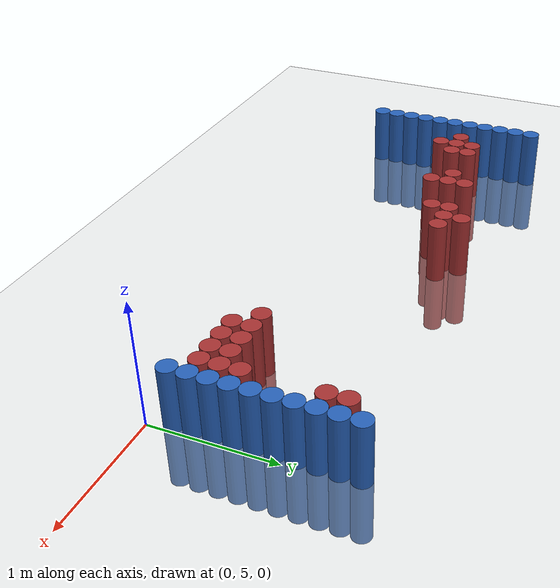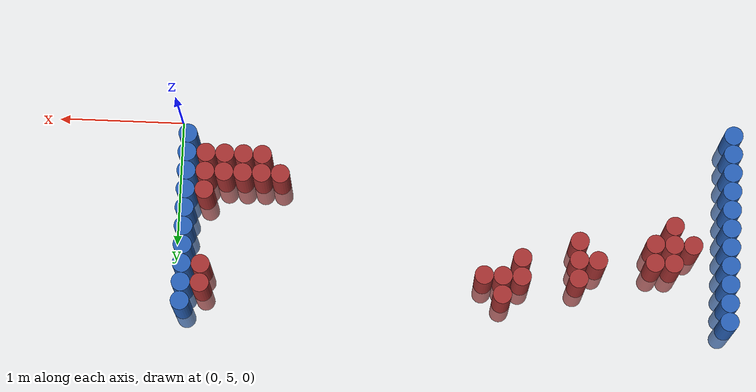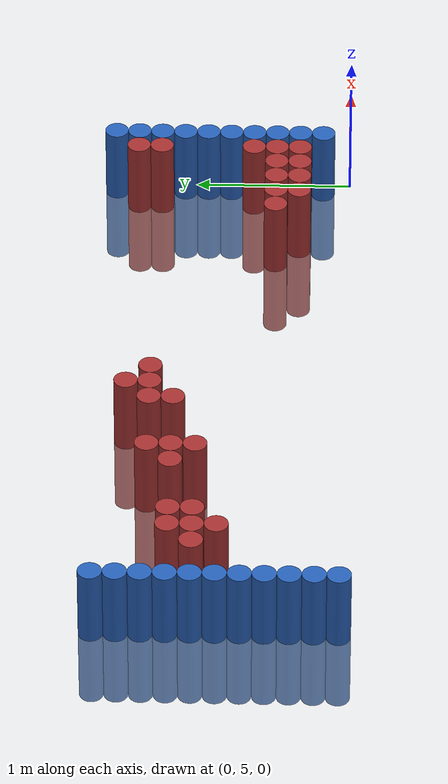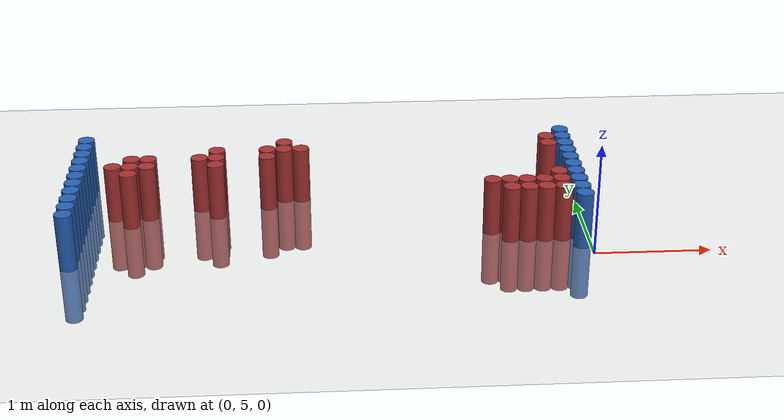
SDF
<sdf version="1.6">
 <world name="default">
  <model name="ground_plane">
   <static>1</static>
   <link name="link">
    <collision name="collision">
     <geometry><plane><normal>0 0 1</normal><size>100 100</size></plane></geometry>
     <surface><friction><ode><mu>100</mu><mu2>50</mu2></ode></friction></surface>
    </collision>
    <visual name="visual">
     <cast_shadows>0</cast_shadows>
     <geometry><plane><normal>0 0 1</normal><size>100 100</size></plane></geometry>
     <material>
      <script><uri>file://media/materials/scripts/gazebo.material</uri><name>Gazebo/Grey</name></script>
     </material>
    </visual>
   </link>
  </model>
  <model name="unit_cylinder_95">
   <static>1</static>
   <pose>-4.425000 5.025000 0.000000 0.000000 0.000000 0.000000</pose>
   <link name="link">
    <inertial>
     <mass>1</mass>
     <inertia><ixx>0.145833</ixx><ixy>0</ixy><ixz>0</ixz><iyy>0.145833</iyy><iyz>0</iyz><izz>0.125</izz></inertia>
    </inertial>
    <collision name="collision">
     <geometry><cylinder><radius>0.075000</radius><length>1</length></cylinder></geometry>
    </collision>
    <visual name="visual">
     <geometry><cylinder><radius>0.075000</radius><length>1</length></cylinder></geometry>
     <material>
      <ambient>0.152000 0.379000 0.720000 1</ambient>
      <diffuse>0.152000 0.379000 0.720000 1</diffuse>
     </material>
     <material>
      <script><name>Gazebo/Grey</name><uri>file://media/materials/scripts/gazebo.material</uri></script>
     </material>
    </visual>
   </link>
  </model>
  <model name="unit_cylinder_96">
   <static>1</static>
   <pose>-4.425000 5.175000 0.000000 0.000000 0.000000 0.000000</pose>
   <link name="link">
    <inertial>
     <mass>1</mass>
     <inertia><ixx>0.145833</ixx><ixy>0</ixy><ixz>0</ixz><iyy>0.145833</iyy><iyz>0</iyz><izz>0.125</izz></inertia>
    </inertial>
    <collision name="collision">
     <geometry><cylinder><radius>0.075000</radius><length>1</length></cylinder></geometry>
    </collision>
    <visual name="visual">
     <geometry><cylinder><radius>0.075000</radius><length>1</length></cylinder></geometry>
     <material>
      <ambient>0.152000 0.379000 0.720000 1</ambient>
      <diffuse>0.152000 0.379000 0.720000 1</diffuse>
     </material>
     <material>
      <script><name>Gazebo/Grey</name><uri>file://media/materials/scripts/gazebo.material</uri></script>
     </material>
    </visual>
   </link>
  </model>
  <model name="unit_cylinder_97">
   <static>1</static>
   <pose>-4.425000 5.325000 0.000000 0.000000 0.000000 0.000000</pose>
   <link name="link">
    <inertial>
     <mass>1</mass>
     <inertia><ixx>0.145833</ixx><ixy>0</ixy><ixz>0</ixz><iyy>0.145833</iyy><iyz>0</iyz><izz>0.125</izz></inertia>
    </inertial>
    <collision name="collision">
     <geometry><cylinder><radius>0.075000</radius><length>1</length></cylinder></geometry>
    </collision>
    <visual name="visual">
     <geometry><cylinder><radius>0.075000</radius><length>1</length></cylinder></geometry>
     <material>
      <ambient>0.152000 0.379000 0.720000 1</ambient>
      <diffuse>0.152000 0.379000 0.720000 1</diffuse>
     </material>
     <material>
      <script><name>Gazebo/Grey</name><uri>file://media/materials/scripts/gazebo.material</uri></script>
     </material>
    </visual>
   </link>
  </model>
  <model name="unit_cylinder_98">
   <static>1</static>
   <pose>-4.425000 5.475000 0.000000 0.000000 0.000000 0.000000</pose>
   <link name="link">
    <inertial>
     <mass>1</mass>
     <inertia><ixx>0.145833</ixx><ixy>0</ixy><ixz>0</ixz><iyy>0.145833</iyy><iyz>0</iyz><izz>0.125</izz></inertia>
    </inertial>
    <collision name="collision">
     <geometry><cylinder><radius>0.075000</radius><length>1</length></cylinder></geometry>
    </collision>
    <visual name="visual">
     <geometry><cylinder><radius>0.075000</radius><length>1</length></cylinder></geometry>
     <material>
      <ambient>0.152000 0.379000 0.720000 1</ambient>
      <diffuse>0.152000 0.379000 0.720000 1</diffuse>
     </material>
     <material>
      <script><name>Gazebo/Grey</name><uri>file://media/materials/scripts/gazebo.material</uri></script>
     </material>
    </visual>
   </link>
  </model>
  <model name="unit_cylinder_99">
   <static>1</static>
   <pose>-4.425000 5.625000 0.000000 0.000000 0.000000 0.000000</pose>
   <link name="link">
    <inertial>
     <mass>1</mass>
     <inertia><ixx>0.145833</ixx><ixy>0</ixy><ixz>0</ixz><iyy>0.145833</iyy><iyz>0</iyz><izz>0.125</izz></inertia>
    </inertial>
    <collision name="collision">
     <geometry><cylinder><radius>0.075000</radius><length>1</length></cylinder></geometry>
    </collision>
    <visual name="visual">
     <geometry><cylinder><radius>0.075000</radius><length>1</length></cylinder></geometry>
     <material>
      <ambient>0.152000 0.379000 0.720000 1</ambient>
      <diffuse>0.152000 0.379000 0.720000 1</diffuse>
     </material>
     <material>
      <script><name>Gazebo/Grey</name><uri>file://media/materials/scripts/gazebo.material</uri></script>
     </material>
    </visual>
   </link>
  </model>
  <model name="unit_cylinder_100">
   <static>1</static>
   <pose>-4.425000 5.775000 0.000000 0.000000 0.000000 0.000000</pose>
   <link name="link">
    <inertial>
     <mass>1</mass>
     <inertia><ixx>0.145833</ixx><ixy>0</ixy><ixz>0</ixz><iyy>0.145833</iyy><iyz>0</iyz><izz>0.125</izz></inertia>
    </inertial>
    <collision name="collision">
     <geometry><cylinder><radius>0.075000</radius><length>1</length></cylinder></geometry>
    </collision>
    <visual name="visual">
     <geometry><cylinder><radius>0.075000</radius><length>1</length></cylinder></geometry>
     <material>
      <ambient>0.152000 0.379000 0.720000 1</ambient>
      <diffuse>0.152000 0.379000 0.720000 1</diffuse>
     </material>
     <material>
      <script><name>Gazebo/Grey</name><uri>file://media/materials/scripts/gazebo.material</uri></script>
     </material>
    </visual>
   </link>
  </model>
  <model name="unit_cylinder_101">
   <static>1</static>
   <pose>-4.425000 5.925000 0.000000 0.000000 0.000000 0.000000</pose>
   <link name="link">
    <inertial>
     <mass>1</mass>
     <inertia><ixx>0.145833</ixx><ixy>0</ixy><ixz>0</ixz><iyy>0.145833</iyy><iyz>0</iyz><izz>0.125</izz></inertia>
    </inertial>
    <collision name="collision">
     <geometry><cylinder><radius>0.075000</radius><length>1</length></cylinder></geometry>
    </collision>
    <visual name="visual">
     <geometry><cylinder><radius>0.075000</radius><length>1</length></cylinder></geometry>
     <material>
      <ambient>0.152000 0.379000 0.720000 1</ambient>
      <diffuse>0.152000 0.379000 0.720000 1</diffuse>
     </material>
     <material>
      <script><name>Gazebo/Grey</name><uri>file://media/materials/scripts/gazebo.material</uri></script>
     </material>
    </visual>
   </link>
  </model>
  <model name="unit_cylinder_102">
   <static>1</static>
   <pose>-4.425000 6.075000 0.000000 0.000000 0.000000 0.000000</pose>
   <link name="link">
    <inertial>
     <mass>1</mass>
     <inertia><ixx>0.145833</ixx><ixy>0</ixy><ixz>0</ixz><iyy>0.145833</iyy><iyz>0</iyz><izz>0.125</izz></inertia>
    </inertial>
    <collision name="collision">
     <geometry><cylinder><radius>0.075000</radius><length>1</length></cylinder></geometry>
    </collision>
    <visual name="visual">
     <geometry><cylinder><radius>0.075000</radius><length>1</length></cylinder></geometry>
     <material>
      <ambient>0.152000 0.379000 0.720000 1</ambient>
      <diffuse>0.152000 0.379000 0.720000 1</diffuse>
     </material>
     <material>
      <script><name>Gazebo/Grey</name><uri>file://media/materials/scripts/gazebo.material</uri></script>
     </material>
    </visual>
   </link>
  </model>
  <model name="unit_cylinder_103">
   <static>1</static>
   <pose>-4.425000 6.225000 0.000000 0.000000 0.000000 0.000000</pose>
   <link name="link">
    <inertial>
     <mass>1</mass>
     <inertia><ixx>0.145833</ixx><ixy>0</ixy><ixz>0</ixz><iyy>0.145833</iyy><iyz>0</iyz><izz>0.125</izz></inertia>
    </inertial>
    <collision name="collision">
     <geometry><cylinder><radius>0.075000</radius><length>1</length></cylinder></geometry>
    </collision>
    <visual name="visual">
     <geometry><cylinder><radius>0.075000</radius><length>1</length></cylinder></geometry>
     <material>
      <ambient>0.152000 0.379000 0.720000 1</ambient>
      <diffuse>0.152000 0.379000 0.720000 1</diffuse>
     </material>
     <material>
      <script><name>Gazebo/Grey</name><uri>file://media/materials/scripts/gazebo.material</uri></script>
     </material>
    </visual>
   </link>
  </model>
  <model name="unit_cylinder_104">
   <static>1</static>
   <pose>-4.425000 6.375000 0.000000 0.000000 0.000000 0.000000</pose>
   <link name="link">
    <inertial>
     <mass>1</mass>
     <inertia><ixx>0.145833</ixx><ixy>0</ixy><ixz>0</ixz><iyy>0.145833</iyy><iyz>0</iyz><izz>0.125</izz></inertia>
    </inertial>
    <collision name="collision">
     <geometry><cylinder><radius>0.075000</radius><length>1</length></cylinder></geometry>
    </collision>
    <visual name="visual">
     <geometry><cylinder><radius>0.075000</radius><length>1</length></cylinder></geometry>
     <material>
      <ambient>0.152000 0.379000 0.720000 1</ambient>
      <diffuse>0.152000 0.379000 0.720000 1</diffuse>
     </material>
     <material>
      <script><name>Gazebo/Grey</name><uri>file://media/materials/scripts/gazebo.material</uri></script>
     </material>
    </visual>
   </link>
  </model>
  <model name="unit_cylinder_105">
   <static>1</static>
   <pose>-4.425000 6.525000 0.000000 0.000000 0.000000 0.000000</pose>
   <link name="link">
    <inertial>
     <mass>1</mass>
     <inertia><ixx>0.145833</ixx><ixy>0</ixy><ixz>0</ixz><iyy>0.145833</iyy><iyz>0</iyz><izz>0.125</izz></inertia>
    </inertial>
    <collision name="collision">
     <geometry><cylinder><radius>0.075000</radius><length>1</length></cylinder></geometry>
    </collision>
    <visual name="visual">
     <geometry><cylinder><radius>0.075000</radius><length>1</length></cylinder></geometry>
     <material>
      <ambient>0.152000 0.379000 0.720000 1</ambient>
      <diffuse>0.152000 0.379000 0.720000 1</diffuse>
     </material>
     <material>
      <script><name>Gazebo/Grey</name><uri>file://media/materials/scripts/gazebo.material</uri></script>
     </material>
    </visual>
   </link>
  </model>
  <model name="unit_cylinder_142">
   <static>1</static>
   <pose>-4.125000 5.925000 0.000000 0.000000 0.000000 0.000000</pose>
   <link name="link">
    <inertial>
     <mass>1</mass>
     <inertia><ixx>0.145833</ixx><ixy>0</ixy><ixz>0</ixz><iyy>0.145833</iyy><iyz>0</iyz><izz>0.125</izz></inertia>
    </inertial>
    <collision name="collision">
     <geometry><cylinder><radius>0.075000</radius><length>1</length></cylinder></geometry>
    </collision>
    <visual name="visual">
     <geometry><cylinder><radius>0.075000</radius><length>1</length></cylinder></geometry>
     <material>
      <ambient>0.648000 0.192000 0.192000 1</ambient>
      <diffuse>0.648000 0.192000 0.192000 1</diffuse>
     </material>
     <material>
      <script><name>Gazebo/Grey</name><uri>file://media/materials/scripts/gazebo.material</uri></script>
     </material>
    </visual>
   </link>
  </model>
  <model name="unit_cylinder_146">
   <static>1</static>
   <pose>-3.975000 5.775000 0.000000 0.000000 0.000000 0.000000</pose>
   <link name="link">
    <inertial>
     <mass>1</mass>
     <inertia><ixx>0.145833</ixx><ixy>0</ixy><ixz>0</ixz><iyy>0.145833</iyy><iyz>0</iyz><izz>0.125</izz></inertia>
    </inertial>
    <collision name="collision">
     <geometry><cylinder><radius>0.075000</radius><length>1</length></cylinder></geometry>
    </collision>
    <visual name="visual">
     <geometry><cylinder><radius>0.075000</radius><length>1</length></cylinder></geometry>
     <material>
      <ambient>0.648000 0.192000 0.192000 1</ambient>
      <diffuse>0.648000 0.192000 0.192000 1</diffuse>
     </material>
     <material>
      <script><name>Gazebo/Grey</name><uri>file://media/materials/scripts/gazebo.material</uri></script>
     </material>
    </visual>
   </link>
  </model>
  <model name="unit_cylinder_147">
   <static>1</static>
   <pose>-3.975000 5.925000 0.000000 0.000000 0.000000 0.000000</pose>
   <link name="link">
    <inertial>
     <mass>1</mass>
     <inertia><ixx>0.145833</ixx><ixy>0</ixy><ixz>0</ixz><iyy>0.145833</iyy><iyz>0</iyz><izz>0.125</izz></inertia>
    </inertial>
    <collision name="collision">
     <geometry><cylinder><radius>0.075000</radius><length>1</length></cylinder></geometry>
    </collision>
    <visual name="visual">
     <geometry><cylinder><radius>0.075000</radius><length>1</length></cylinder></geometry>
     <material>
      <ambient>0.648000 0.192000 0.192000 1</ambient>
      <diffuse>0.648000 0.192000 0.192000 1</diffuse>
     </material>
     <material>
      <script><name>Gazebo/Grey</name><uri>file://media/materials/scripts/gazebo.material</uri></script>
     </material>
    </visual>
   </link>
  </model>
  <model name="unit_cylinder_148">
   <static>1</static>
   <pose>-3.975000 6.075000 0.000000 0.000000 0.000000 0.000000</pose>
   <link name="link">
    <inertial>
     <mass>1</mass>
     <inertia><ixx>0.145833</ixx><ixy>0</ixy><ixz>0</ixz><iyy>0.145833</iyy><iyz>0</iyz><izz>0.125</izz></inertia>
    </inertial>
    <collision name="collision">
     <geometry><cylinder><radius>0.075000</radius><length>1</length></cylinder></geometry>
    </collision>
    <visual name="visual">
     <geometry><cylinder><radius>0.075000</radius><length>1</length></cylinder></geometry>
     <material>
      <ambient>0.648000 0.192000 0.192000 1</ambient>
      <diffuse>0.648000 0.192000 0.192000 1</diffuse>
     </material>
     <material>
      <script><name>Gazebo/Grey</name><uri>file://media/materials/scripts/gazebo.material</uri></script>
     </material>
    </visual>
   </link>
  </model>
  <model name="unit_cylinder_151">
   <static>1</static>
   <pose>-3.825000 5.925000 0.000000 0.000000 0.000000 0.000000</pose>
   <link name="link">
    <inertial>
     <mass>1</mass>
     <inertia><ixx>0.145833</ixx><ixy>0</ixy><ixz>0</ixz><iyy>0.145833</iyy><iyz>0</iyz><izz>0.125</izz></inertia>
    </inertial>
    <collision name="collision">
     <geometry><cylinder><radius>0.075000</radius><length>1</length></cylinder></geometry>
    </collision>
    <visual name="visual">
     <geometry><cylinder><radius>0.075000</radius><length>1</length></cylinder></geometry>
     <material>
      <ambient>0.648000 0.192000 0.192000 1</ambient>
      <diffuse>0.648000 0.192000 0.192000 1</diffuse>
     </material>
     <material>
      <script><name>Gazebo/Grey</name><uri>file://media/materials/scripts/gazebo.material</uri></script>
     </material>
    </visual>
   </link>
  </model>
  <model name="unit_cylinder_152">
   <static>1</static>
   <pose>-3.825000 6.075000 0.000000 0.000000 0.000000 0.000000</pose>
   <link name="link">
    <inertial>
     <mass>1</mass>
     <inertia><ixx>0.145833</ixx><ixy>0</ixy><ixz>0</ixz><iyy>0.145833</iyy><iyz>0</iyz><izz>0.125</izz></inertia>
    </inertial>
    <collision name="collision">
     <geometry><cylinder><radius>0.075000</radius><length>1</length></cylinder></geometry>
    </collision>
    <visual name="visual">
     <geometry><cylinder><radius>0.075000</radius><length>1</length></cylinder></geometry>
     <material>
      <ambient>0.648000 0.192000 0.192000 1</ambient>
      <diffuse>0.648000 0.192000 0.192000 1</diffuse>
     </material>
     <material>
      <script><name>Gazebo/Grey</name><uri>file://media/materials/scripts/gazebo.material</uri></script>
     </material>
    </visual>
   </link>
  </model>
  <model name="unit_cylinder_160">
   <static>1</static>
   <pose>-3.375000 6.075000 0.000000 0.000000 0.000000 0.000000</pose>
   <link name="link">
    <inertial>
     <mass>1</mass>
     <inertia><ixx>0.145833</ixx><ixy>0</ixy><ixz>0</ixz><iyy>0.145833</iyy><iyz>0</iyz><izz>0.125</izz></inertia>
    </inertial>
    <collision name="collision">
     <geometry><cylinder><radius>0.075000</radius><length>1</length></cylinder></geometry>
    </collision>
    <visual name="visual">
     <geometry><cylinder><radius>0.075000</radius><length>1</length></cylinder></geometry>
     <material>
      <ambient>0.648000 0.192000 0.192000 1</ambient>
      <diffuse>0.648000 0.192000 0.192000 1</diffuse>
     </material>
     <material>
      <script><name>Gazebo/Grey</name><uri>file://media/materials/scripts/gazebo.material</uri></script>
     </material>
    </visual>
   </link>
  </model>
  <model name="unit_cylinder_161">
   <static>1</static>
   <pose>-3.225000 5.925000 0.000000 0.000000 0.000000 0.000000</pose>
   <link name="link">
    <inertial>
     <mass>1</mass>
     <inertia><ixx>0.145833</ixx><ixy>0</ixy><ixz>0</ixz><iyy>0.145833</iyy><iyz>0</iyz><izz>0.125</izz></inertia>
    </inertial>
    <collision name="collision">
     <geometry><cylinder><radius>0.075000</radius><length>1</length></cylinder></geometry>
    </collision>
    <visual name="visual">
     <geometry><cylinder><radius>0.075000</radius><length>1</length></cylinder></geometry>
     <material>
      <ambient>0.648000 0.192000 0.192000 1</ambient>
      <diffuse>0.648000 0.192000 0.192000 1</diffuse>
     </material>
     <material>
      <script><name>Gazebo/Grey</name><uri>file://media/materials/scripts/gazebo.material</uri></script>
     </material>
    </visual>
   </link>
  </model>
  <model name="unit_cylinder_162">
   <static>1</static>
   <pose>-3.225000 6.075000 0.000000 0.000000 0.000000 0.000000</pose>
   <link name="link">
    <inertial>
     <mass>1</mass>
     <inertia><ixx>0.145833</ixx><ixy>0</ixy><ixz>0</ixz><iyy>0.145833</iyy><iyz>0</iyz><izz>0.125</izz></inertia>
    </inertial>
    <collision name="collision">
     <geometry><cylinder><radius>0.075000</radius><length>1</length></cylinder></geometry>
    </collision>
    <visual name="visual">
     <geometry><cylinder><radius>0.075000</radius><length>1</length></cylinder></geometry>
     <material>
      <ambient>0.648000 0.192000 0.192000 1</ambient>
      <diffuse>0.648000 0.192000 0.192000 1</diffuse>
     </material>
     <material>
      <script><name>Gazebo/Grey</name><uri>file://media/materials/scripts/gazebo.material</uri></script>
     </material>
    </visual>
   </link>
  </model>
  <model name="unit_cylinder_163">
   <static>1</static>
   <pose>-3.225000 6.225000 0.000000 0.000000 0.000000 0.000000</pose>
   <link name="link">
    <inertial>
     <mass>1</mass>
     <inertia><ixx>0.145833</ixx><ixy>0</ixy><ixz>0</ixz><iyy>0.145833</iyy><iyz>0</iyz><izz>0.125</izz></inertia>
    </inertial>
    <collision name="collision">
     <geometry><cylinder><radius>0.075000</radius><length>1</length></cylinder></geometry>
    </collision>
    <visual name="visual">
     <geometry><cylinder><radius>0.075000</radius><length>1</length></cylinder></geometry>
     <material>
      <ambient>0.648000 0.192000 0.192000 1</ambient>
      <diffuse>0.648000 0.192000 0.192000 1</diffuse>
     </material>
     <material>
      <script><name>Gazebo/Grey</name><uri>file://media/materials/scripts/gazebo.material</uri></script>
     </material>
    </visual>
   </link>
  </model>
  <model name="unit_cylinder_164">
   <static>1</static>
   <pose>-2.775000 6.075000 0.000000 0.000000 0.000000 0.000000</pose>
   <link name="link">
    <inertial>
     <mass>1</mass>
     <inertia><ixx>0.145833</ixx><ixy>0</ixy><ixz>0</ixz><iyy>0.145833</iyy><iyz>0</iyz><izz>0.125</izz></inertia>
    </inertial>
    <collision name="collision">
     <geometry><cylinder><radius>0.075000</radius><length>1</length></cylinder></geometry>
    </collision>
    <visual name="visual">
     <geometry><cylinder><radius>0.075000</radius><length>1</length></cylinder></geometry>
     <material>
      <ambient>0.648000 0.192000 0.192000 1</ambient>
      <diffuse>0.648000 0.192000 0.192000 1</diffuse>
     </material>
     <material>
      <script><name>Gazebo/Grey</name><uri>file://media/materials/scripts/gazebo.material</uri></script>
     </material>
    </visual>
   </link>
  </model>
  <model name="unit_cylinder_165">
   <static>1</static>
   <pose>-2.775000 6.225000 0.000000 0.000000 0.000000 0.000000</pose>
   <link name="link">
    <inertial>
     <mass>1</mass>
     <inertia><ixx>0.145833</ixx><ixy>0</ixy><ixz>0</ixz><iyy>0.145833</iyy><iyz>0</iyz><izz>0.125</izz></inertia>
    </inertial>
    <collision name="collision">
     <geometry><cylinder><radius>0.075000</radius><length>1</length></cylinder></geometry>
    </collision>
    <visual name="visual">
     <geometry><cylinder><radius>0.075000</radius><length>1</length></cylinder></geometry>
     <material>
      <ambient>0.648000 0.192000 0.192000 1</ambient>
      <diffuse>0.648000 0.192000 0.192000 1</diffuse>
     </material>
     <material>
      <script><name>Gazebo/Grey</name><uri>file://media/materials/scripts/gazebo.material</uri></script>
     </material>
    </visual>
   </link>
  </model>
  <model name="unit_cylinder_166">
   <static>1</static>
   <pose>-2.625000 6.225000 0.000000 0.000000 0.000000 0.000000</pose>
   <link name="link">
    <inertial>
     <mass>1</mass>
     <inertia><ixx>0.145833</ixx><ixy>0</ixy><ixz>0</ixz><iyy>0.145833</iyy><iyz>0</iyz><izz>0.125</izz></inertia>
    </inertial>
    <collision name="collision">
     <geometry><cylinder><radius>0.075000</radius><length>1</length></cylinder></geometry>
    </collision>
    <visual name="visual">
     <geometry><cylinder><radius>0.075000</radius><length>1</length></cylinder></geometry>
     <material>
      <ambient>0.648000 0.192000 0.192000 1</ambient>
      <diffuse>0.648000 0.192000 0.192000 1</diffuse>
     </material>
     <material>
      <script><name>Gazebo/Grey</name><uri>file://media/materials/scripts/gazebo.material</uri></script>
     </material>
    </visual>
   </link>
  </model>
  <model name="unit_cylinder_167">
   <static>1</static>
   <pose>-2.625000 6.375000 0.000000 0.000000 0.000000 0.000000</pose>
   <link name="link">
    <inertial>
     <mass>1</mass>
     <inertia><ixx>0.145833</ixx><ixy>0</ixy><ixz>0</ixz><iyy>0.145833</iyy><iyz>0</iyz><izz>0.125</izz></inertia>
    </inertial>
    <collision name="collision">
     <geometry><cylinder><radius>0.075000</radius><length>1</length></cylinder></geometry>
    </collision>
    <visual name="visual">
     <geometry><cylinder><radius>0.075000</radius><length>1</length></cylinder></geometry>
     <material>
      <ambient>0.648000 0.192000 0.192000 1</ambient>
      <diffuse>0.648000 0.192000 0.192000 1</diffuse>
     </material>
     <material>
      <script><name>Gazebo/Grey</name><uri>file://media/materials/scripts/gazebo.material</uri></script>
     </material>
    </visual>
   </link>
  </model>
  <model name="unit_cylinder_168">
   <static>1</static>
   <pose>-2.475000 6.225000 0.000000 0.000000 0.000000 0.000000</pose>
   <link name="link">
    <inertial>
     <mass>1</mass>
     <inertia><ixx>0.145833</ixx><ixy>0</ixy><ixz>0</ixz><iyy>0.145833</iyy><iyz>0</iyz><izz>0.125</izz></inertia>
    </inertial>
    <collision name="collision">
     <geometry><cylinder><radius>0.075000</radius><length>1</length></cylinder></geometry>
    </collision>
    <visual name="visual">
     <geometry><cylinder><radius>0.075000</radius><length>1</length></cylinder></geometry>
     <material>
      <ambient>0.648000 0.192000 0.192000 1</ambient>
      <diffuse>0.648000 0.192000 0.192000 1</diffuse>
     </material>
     <material>
      <script><name>Gazebo/Grey</name><uri>file://media/materials/scripts/gazebo.material</uri></script>
     </material>
    </visual>
   </link>
  </model>
  <model name="unit_cylinder_181">
   <static>1</static>
   <pose>-0.825000 5.475000 0.000000 0.000000 0.000000 0.000000</pose>
   <link name="link">
    <inertial>
     <mass>1</mass>
     <inertia><ixx>0.145833</ixx><ixy>0</ixy><ixz>0</ixz><iyy>0.145833</iyy><iyz>0</iyz><izz>0.125</izz></inertia>
    </inertial>
    <collision name="collision">
     <geometry><cylinder><radius>0.075000</radius><length>1</length></cylinder></geometry>
    </collision>
    <visual name="visual">
     <geometry><cylinder><radius>0.075000</radius><length>1</length></cylinder></geometry>
     <material>
      <ambient>0.648000 0.192000 0.192000 1</ambient>
      <diffuse>0.648000 0.192000 0.192000 1</diffuse>
     </material>
     <material>
      <script><name>Gazebo/Grey</name><uri>file://media/materials/scripts/gazebo.material</uri></script>
     </material>
    </visual>
   </link>
  </model>
  <model name="unit_cylinder_182">
   <static>1</static>
   <pose>-0.675000 5.325000 0.000000 0.000000 0.000000 0.000000</pose>
   <link name="link">
    <inertial>
     <mass>1</mass>
     <inertia><ixx>0.145833</ixx><ixy>0</ixy><ixz>0</ixz><iyy>0.145833</iyy><iyz>0</iyz><izz>0.125</izz></inertia>
    </inertial>
    <collision name="collision">
     <geometry><cylinder><radius>0.075000</radius><length>1</length></cylinder></geometry>
    </collision>
    <visual name="visual">
     <geometry><cylinder><radius>0.075000</radius><length>1</length></cylinder></geometry>
     <material>
      <ambient>0.648000 0.192000 0.192000 1</ambient>
      <diffuse>0.648000 0.192000 0.192000 1</diffuse>
     </material>
     <material>
      <script><name>Gazebo/Grey</name><uri>file://media/materials/scripts/gazebo.material</uri></script>
     </material>
    </visual>
   </link>
  </model>
  <model name="unit_cylinder_183">
   <static>1</static>
   <pose>-0.675000 5.475000 0.000000 0.000000 0.000000 0.000000</pose>
   <link name="link">
    <inertial>
     <mass>1</mass>
     <inertia><ixx>0.145833</ixx><ixy>0</ixy><ixz>0</ixz><iyy>0.145833</iyy><iyz>0</iyz><izz>0.125</izz></inertia>
    </inertial>
    <collision name="collision">
     <geometry><cylinder><radius>0.075000</radius><length>1</length></cylinder></geometry>
    </collision>
    <visual name="visual">
     <geometry><cylinder><radius>0.075000</radius><length>1</length></cylinder></geometry>
     <material>
      <ambient>0.648000 0.192000 0.192000 1</ambient>
      <diffuse>0.648000 0.192000 0.192000 1</diffuse>
     </material>
     <material>
      <script><name>Gazebo/Grey</name><uri>file://media/materials/scripts/gazebo.material</uri></script>
     </material>
    </visual>
   </link>
  </model>
  <model name="unit_cylinder_184">
   <static>1</static>
   <pose>-0.525000 5.325000 0.000000 0.000000 0.000000 0.000000</pose>
   <link name="link">
    <inertial>
     <mass>1</mass>
     <inertia><ixx>0.145833</ixx><ixy>0</ixy><ixz>0</ixz><iyy>0.145833</iyy><iyz>0</iyz><izz>0.125</izz></inertia>
    </inertial>
    <collision name="collision">
     <geometry><cylinder><radius>0.075000</radius><length>1</length></cylinder></geometry>
    </collision>
    <visual name="visual">
     <geometry><cylinder><radius>0.075000</radius><length>1</length></cylinder></geometry>
     <material>
      <ambient>0.648000 0.192000 0.192000 1</ambient>
      <diffuse>0.648000 0.192000 0.192000 1</diffuse>
     </material>
     <material>
      <script><name>Gazebo/Grey</name><uri>file://media/materials/scripts/gazebo.material</uri></script>
     </material>
    </visual>
   </link>
  </model>
  <model name="unit_cylinder_185">
   <static>1</static>
   <pose>-0.525000 5.475000 0.000000 0.000000 0.000000 0.000000</pose>
   <link name="link">
    <inertial>
     <mass>1</mass>
     <inertia><ixx>0.145833</ixx><ixy>0</ixy><ixz>0</ixz><iyy>0.145833</iyy><iyz>0</iyz><izz>0.125</izz></inertia>
    </inertial>
    <collision name="collision">
     <geometry><cylinder><radius>0.075000</radius><length>1</length></cylinder></geometry>
    </collision>
    <visual name="visual">
     <geometry><cylinder><radius>0.075000</radius><length>1</length></cylinder></geometry>
     <material>
      <ambient>0.648000 0.192000 0.192000 1</ambient>
      <diffuse>0.648000 0.192000 0.192000 1</diffuse>
     </material>
     <material>
      <script><name>Gazebo/Grey</name><uri>file://media/materials/scripts/gazebo.material</uri></script>
     </material>
    </visual>
   </link>
  </model>
  <model name="unit_cylinder_186">
   <static>1</static>
   <pose>-0.375000 5.325000 0.000000 0.000000 0.000000 0.000000</pose>
   <link name="link">
    <inertial>
     <mass>1</mass>
     <inertia><ixx>0.145833</ixx><ixy>0</ixy><ixz>0</ixz><iyy>0.145833</iyy><iyz>0</iyz><izz>0.125</izz></inertia>
    </inertial>
    <collision name="collision">
     <geometry><cylinder><radius>0.075000</radius><length>1</length></cylinder></geometry>
    </collision>
    <visual name="visual">
     <geometry><cylinder><radius>0.075000</radius><length>1</length></cylinder></geometry>
     <material>
      <ambient>0.648000 0.192000 0.192000 1</ambient>
      <diffuse>0.648000 0.192000 0.192000 1</diffuse>
     </material>
     <material>
      <script><name>Gazebo/Grey</name><uri>file://media/materials/scripts/gazebo.material</uri></script>
     </material>
    </visual>
   </link>
  </model>
  <model name="unit_cylinder_187">
   <static>1</static>
   <pose>-0.375000 5.475000 0.000000 0.000000 0.000000 0.000000</pose>
   <link name="link">
    <inertial>
     <mass>1</mass>
     <inertia><ixx>0.145833</ixx><ixy>0</ixy><ixz>0</ixz><iyy>0.145833</iyy><iyz>0</iyz><izz>0.125</izz></inertia>
    </inertial>
    <collision name="collision">
     <geometry><cylinder><radius>0.075000</radius><length>1</length></cylinder></geometry>
    </collision>
    <visual name="visual">
     <geometry><cylinder><radius>0.075000</radius><length>1</length></cylinder></geometry>
     <material>
      <ambient>0.648000 0.192000 0.192000 1</ambient>
      <diffuse>0.648000 0.192000 0.192000 1</diffuse>
     </material>
     <material>
      <script><name>Gazebo/Grey</name><uri>file://media/materials/scripts/gazebo.material</uri></script>
     </material>
    </visual>
   </link>
  </model>
  <model name="unit_cylinder_194">
   <static>1</static>
   <pose>-0.225000 5.325000 0.000000 0.000000 0.000000 0.000000</pose>
   <link name="link">
    <inertial>
     <mass>1</mass>
     <inertia><ixx>0.145833</ixx><ixy>0</ixy><ixz>0</ixz><iyy>0.145833</iyy><iyz>0</iyz><izz>0.125</izz></inertia>
    </inertial>
    <collision name="collision">
     <geometry><cylinder><radius>0.075000</radius><length>1</length></cylinder></geometry>
    </collision>
    <visual name="visual">
     <geometry><cylinder><radius>0.075000</radius><length>1</length></cylinder></geometry>
     <material>
      <ambient>0.648000 0.192000 0.192000 1</ambient>
      <diffuse>0.648000 0.192000 0.192000 1</diffuse>
     </material>
     <material>
      <script><name>Gazebo/Grey</name><uri>file://media/materials/scripts/gazebo.material</uri></script>
     </material>
    </visual>
   </link>
  </model>
  <model name="unit_cylinder_195">
   <static>1</static>
   <pose>-0.225000 5.475000 0.000000 0.000000 0.000000 0.000000</pose>
   <link name="link">
    <inertial>
     <mass>1</mass>
     <inertia><ixx>0.145833</ixx><ixy>0</ixy><ixz>0</ixz><iyy>0.145833</iyy><iyz>0</iyz><izz>0.125</izz></inertia>
    </inertial>
    <collision name="collision">
     <geometry><cylinder><radius>0.075000</radius><length>1</length></cylinder></geometry>
    </collision>
    <visual name="visual">
     <geometry><cylinder><radius>0.075000</radius><length>1</length></cylinder></geometry>
     <material>
      <ambient>0.648000 0.192000 0.192000 1</ambient>
      <diffuse>0.648000 0.192000 0.192000 1</diffuse>
     </material>
     <material>
      <script><name>Gazebo/Grey</name><uri>file://media/materials/scripts/gazebo.material</uri></script>
     </material>
    </visual>
   </link>
  </model>
  <model name="unit_cylinder_196">
   <static>1</static>
   <pose>-0.225000 5.625000 0.000000 0.000000 0.000000 0.000000</pose>
   <link name="link">
    <inertial>
     <mass>1</mass>
     <inertia><ixx>0.145833</ixx><ixy>0</ixy><ixz>0</ixz><iyy>0.145833</iyy><iyz>0</iyz><izz>0.125</izz></inertia>
    </inertial>
    <collision name="collision">
     <geometry><cylinder><radius>0.075000</radius><length>1</length></cylinder></geometry>
    </collision>
    <visual name="visual">
     <geometry><cylinder><radius>0.075000</radius><length>1</length></cylinder></geometry>
     <material>
      <ambient>0.648000 0.192000 0.192000 1</ambient>
      <diffuse>0.648000 0.192000 0.192000 1</diffuse>
     </material>
     <material>
      <script><name>Gazebo/Grey</name><uri>file://media/materials/scripts/gazebo.material</uri></script>
     </material>
    </visual>
   </link>
  </model>
  <model name="unit_cylinder_197">
   <static>1</static>
   <pose>-0.225000 6.225000 0.000000 0.000000 0.000000 0.000000</pose>
   <link name="link">
    <inertial>
     <mass>1</mass>
     <inertia><ixx>0.145833</ixx><ixy>0</ixy><ixz>0</ixz><iyy>0.145833</iyy><iyz>0</iyz><izz>0.125</izz></inertia>
    </inertial>
    <collision name="collision">
     <geometry><cylinder><radius>0.075000</radius><length>1</length></cylinder></geometry>
    </collision>
    <visual name="visual">
     <geometry><cylinder><radius>0.075000</radius><length>1</length></cylinder></geometry>
     <material>
      <ambient>0.648000 0.192000 0.192000 1</ambient>
      <diffuse>0.648000 0.192000 0.192000 1</diffuse>
     </material>
     <material>
      <script><name>Gazebo/Grey</name><uri>file://media/materials/scripts/gazebo.material</uri></script>
     </material>
    </visual>
   </link>
  </model>
  <model name="unit_cylinder_198">
   <static>1</static>
   <pose>-0.225000 6.375000 0.000000 0.000000 0.000000 0.000000</pose>
   <link name="link">
    <inertial>
     <mass>1</mass>
     <inertia><ixx>0.145833</ixx><ixy>0</ixy><ixz>0</ixz><iyy>0.145833</iyy><iyz>0</iyz><izz>0.125</izz></inertia>
    </inertial>
    <collision name="collision">
     <geometry><cylinder><radius>0.075000</radius><length>1</length></cylinder></geometry>
    </collision>
    <visual name="visual">
     <geometry><cylinder><radius>0.075000</radius><length>1</length></cylinder></geometry>
     <material>
      <ambient>0.648000 0.192000 0.192000 1</ambient>
      <diffuse>0.648000 0.192000 0.192000 1</diffuse>
     </material>
     <material>
      <script><name>Gazebo/Grey</name><uri>file://media/materials/scripts/gazebo.material</uri></script>
     </material>
    </visual>
   </link>
  </model>
  <model name="unit_cylinder_208">
   <static>1</static>
   <pose>-0.075000 5.175000 0.000000 0.000000 0.000000 0.000000</pose>
   <link name="link">
    <inertial>
     <mass>1</mass>
     <inertia><ixx>0.145833</ixx><ixy>0</ixy><ixz>0</ixz><iyy>0.145833</iyy><iyz>0</iyz><izz>0.125</izz></inertia>
    </inertial>
    <collision name="collision">
     <geometry><cylinder><radius>0.075000</radius><length>1</length></cylinder></geometry>
    </collision>
    <visual name="visual">
     <geometry><cylinder><radius>0.075000</radius><length>1</length></cylinder></geometry>
     <material>
      <ambient>0.152000 0.379000 0.720000 1</ambient>
      <diffuse>0.152000 0.379000 0.720000 1</diffuse>
     </material>
     <material>
      <script><name>Gazebo/Grey</name><uri>file://media/materials/scripts/gazebo.material</uri></script>
     </material>
    </visual>
   </link>
  </model>
  <model name="unit_cylinder_209">
   <static>1</static>
   <pose>-0.075000 5.325000 0.000000 0.000000 0.000000 0.000000</pose>
   <link name="link">
    <inertial>
     <mass>1</mass>
     <inertia><ixx>0.145833</ixx><ixy>0</ixy><ixz>0</ixz><iyy>0.145833</iyy><iyz>0</iyz><izz>0.125</izz></inertia>
    </inertial>
    <collision name="collision">
     <geometry><cylinder><radius>0.075000</radius><length>1</length></cylinder></geometry>
    </collision>
    <visual name="visual">
     <geometry><cylinder><radius>0.075000</radius><length>1</length></cylinder></geometry>
     <material>
      <ambient>0.152000 0.379000 0.720000 1</ambient>
      <diffuse>0.152000 0.379000 0.720000 1</diffuse>
     </material>
     <material>
      <script><name>Gazebo/Grey</name><uri>file://media/materials/scripts/gazebo.material</uri></script>
     </material>
    </visual>
   </link>
  </model>
  <model name="unit_cylinder_210">
   <static>1</static>
   <pose>-0.075000 5.475000 0.000000 0.000000 0.000000 0.000000</pose>
   <link name="link">
    <inertial>
     <mass>1</mass>
     <inertia><ixx>0.145833</ixx><ixy>0</ixy><ixz>0</ixz><iyy>0.145833</iyy><iyz>0</iyz><izz>0.125</izz></inertia>
    </inertial>
    <collision name="collision">
     <geometry><cylinder><radius>0.075000</radius><length>1</length></cylinder></geometry>
    </collision>
    <visual name="visual">
     <geometry><cylinder><radius>0.075000</radius><length>1</length></cylinder></geometry>
     <material>
      <ambient>0.152000 0.379000 0.720000 1</ambient>
      <diffuse>0.152000 0.379000 0.720000 1</diffuse>
     </material>
     <material>
      <script><name>Gazebo/Grey</name><uri>file://media/materials/scripts/gazebo.material</uri></script>
     </material>
    </visual>
   </link>
  </model>
  <model name="unit_cylinder_211">
   <static>1</static>
   <pose>-0.075000 5.625000 0.000000 0.000000 0.000000 0.000000</pose>
   <link name="link">
    <inertial>
     <mass>1</mass>
     <inertia><ixx>0.145833</ixx><ixy>0</ixy><ixz>0</ixz><iyy>0.145833</iyy><iyz>0</iyz><izz>0.125</izz></inertia>
    </inertial>
    <collision name="collision">
     <geometry><cylinder><radius>0.075000</radius><length>1</length></cylinder></geometry>
    </collision>
    <visual name="visual">
     <geometry><cylinder><radius>0.075000</radius><length>1</length></cylinder></geometry>
     <material>
      <ambient>0.152000 0.379000 0.720000 1</ambient>
      <diffuse>0.152000 0.379000 0.720000 1</diffuse>
     </material>
     <material>
      <script><name>Gazebo/Grey</name><uri>file://media/materials/scripts/gazebo.material</uri></script>
     </material>
    </visual>
   </link>
  </model>
  <model name="unit_cylinder_212">
   <static>1</static>
   <pose>-0.075000 5.775000 0.000000 0.000000 0.000000 0.000000</pose>
   <link name="link">
    <inertial>
     <mass>1</mass>
     <inertia><ixx>0.145833</ixx><ixy>0</ixy><ixz>0</ixz><iyy>0.145833</iyy><iyz>0</iyz><izz>0.125</izz></inertia>
    </inertial>
    <collision name="collision">
     <geometry><cylinder><radius>0.075000</radius><length>1</length></cylinder></geometry>
    </collision>
    <visual name="visual">
     <geometry><cylinder><radius>0.075000</radius><length>1</length></cylinder></geometry>
     <material>
      <ambient>0.152000 0.379000 0.720000 1</ambient>
      <diffuse>0.152000 0.379000 0.720000 1</diffuse>
     </material>
     <material>
      <script><name>Gazebo/Grey</name><uri>file://media/materials/scripts/gazebo.material</uri></script>
     </material>
    </visual>
   </link>
  </model>
  <model name="unit_cylinder_213">
   <static>1</static>
   <pose>-0.075000 5.925000 0.000000 0.000000 0.000000 0.000000</pose>
   <link name="link">
    <inertial>
     <mass>1</mass>
     <inertia><ixx>0.145833</ixx><ixy>0</ixy><ixz>0</ixz><iyy>0.145833</iyy><iyz>0</iyz><izz>0.125</izz></inertia>
    </inertial>
    <collision name="collision">
     <geometry><cylinder><radius>0.075000</radius><length>1</length></cylinder></geometry>
    </collision>
    <visual name="visual">
     <geometry><cylinder><radius>0.075000</radius><length>1</length></cylinder></geometry>
     <material>
      <ambient>0.152000 0.379000 0.720000 1</ambient>
      <diffuse>0.152000 0.379000 0.720000 1</diffuse>
     </material>
     <material>
      <script><name>Gazebo/Grey</name><uri>file://media/materials/scripts/gazebo.material</uri></script>
     </material>
    </visual>
   </link>
  </model>
  <model name="unit_cylinder_214">
   <static>1</static>
   <pose>-0.075000 6.075000 0.000000 0.000000 0.000000 0.000000</pose>
   <link name="link">
    <inertial>
     <mass>1</mass>
     <inertia><ixx>0.145833</ixx><ixy>0</ixy><ixz>0</ixz><iyy>0.145833</iyy><iyz>0</iyz><izz>0.125</izz></inertia>
    </inertial>
    <collision name="collision">
     <geometry><cylinder><radius>0.075000</radius><length>1</length></cylinder></geometry>
    </collision>
    <visual name="visual">
     <geometry><cylinder><radius>0.075000</radius><length>1</length></cylinder></geometry>
     <material>
      <ambient>0.152000 0.379000 0.720000 1</ambient>
      <diffuse>0.152000 0.379000 0.720000 1</diffuse>
     </material>
     <material>
      <script><name>Gazebo/Grey</name><uri>file://media/materials/scripts/gazebo.material</uri></script>
     </material>
    </visual>
   </link>
  </model>
  <model name="unit_cylinder_215">
   <static>1</static>
   <pose>-0.075000 6.225000 0.000000 0.000000 0.000000 0.000000</pose>
   <link name="link">
    <inertial>
     <mass>1</mass>
     <inertia><ixx>0.145833</ixx><ixy>0</ixy><ixz>0</ixz><iyy>0.145833</iyy><iyz>0</iyz><izz>0.125</izz></inertia>
    </inertial>
    <collision name="collision">
     <geometry><cylinder><radius>0.075000</radius><length>1</length></cylinder></geometry>
    </collision>
    <visual name="visual">
     <geometry><cylinder><radius>0.075000</radius><length>1</length></cylinder></geometry>
     <material>
      <ambient>0.152000 0.379000 0.720000 1</ambient>
      <diffuse>0.152000 0.379000 0.720000 1</diffuse>
     </material>
     <material>
      <script><name>Gazebo/Grey</name><uri>file://media/materials/scripts/gazebo.material</uri></script>
     </material>
    </visual>
   </link>
  </model>
  <model name="unit_cylinder_216">
   <static>1</static>
   <pose>-0.075000 6.375000 0.000000 0.000000 0.000000 0.000000</pose>
   <link name="link">
    <inertial>
     <mass>1</mass>
     <inertia><ixx>0.145833</ixx><ixy>0</ixy><ixz>0</ixz><iyy>0.145833</iyy><iyz>0</iyz><izz>0.125</izz></inertia>
    </inertial>
    <collision name="collision">
     <geometry><cylinder><radius>0.075000</radius><length>1</length></cylinder></geometry>
    </collision>
    <visual name="visual">
     <geometry><cylinder><radius>0.075000</radius><length>1</length></cylinder></geometry>
     <material>
      <ambient>0.152000 0.379000 0.720000 1</ambient>
      <diffuse>0.152000 0.379000 0.720000 1</diffuse>
     </material>
     <material>
      <script><name>Gazebo/Grey</name><uri>file://media/materials/scripts/gazebo.material</uri></script>
     </material>
    </visual>
   </link>
  </model>
  <model name="unit_cylinder_217">
   <static>1</static>
   <pose>-0.075000 6.525000 0.000000 0.000000 0.000000 0.000000</pose>
   <link name="link">
    <inertial>
     <mass>1</mass>
     <inertia><ixx>0.145833</ixx><ixy>0</ixy><ixz>0</ixz><iyy>0.145833</iyy><iyz>0</iyz><izz>0.125</izz></inertia>
    </inertial>
    <collision name="collision">
     <geometry><cylinder><radius>0.075000</radius><length>1</length></cylinder></geometry>
    </collision>
    <visual name="visual">
     <geometry><cylinder><radius>0.075000</radius><length>1</length></cylinder></geometry>
     <material>
      <ambient>0.152000 0.379000 0.720000 1</ambient>
      <diffuse>0.152000 0.379000 0.720000 1</diffuse>
     </material>
     <material>
      <script><name>Gazebo/Grey</name><uri>file://media/materials/scripts/gazebo.material</uri></script>
     </material>
    </visual>
   </link>
  </model>
 </world>
</sdf>
